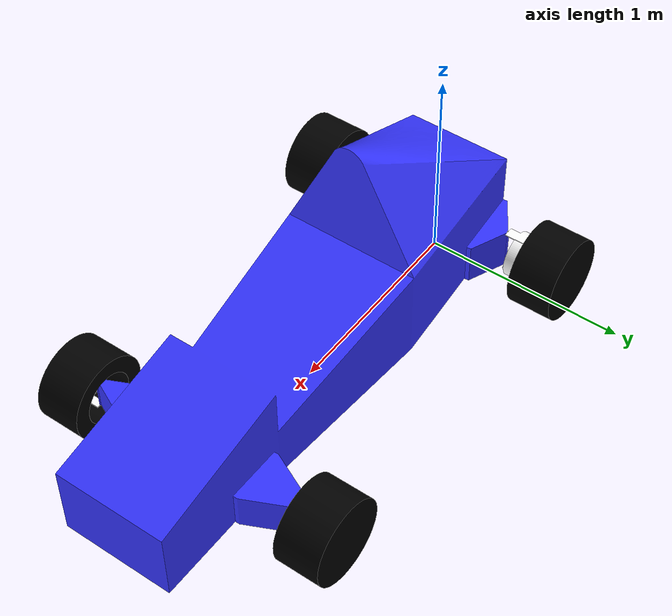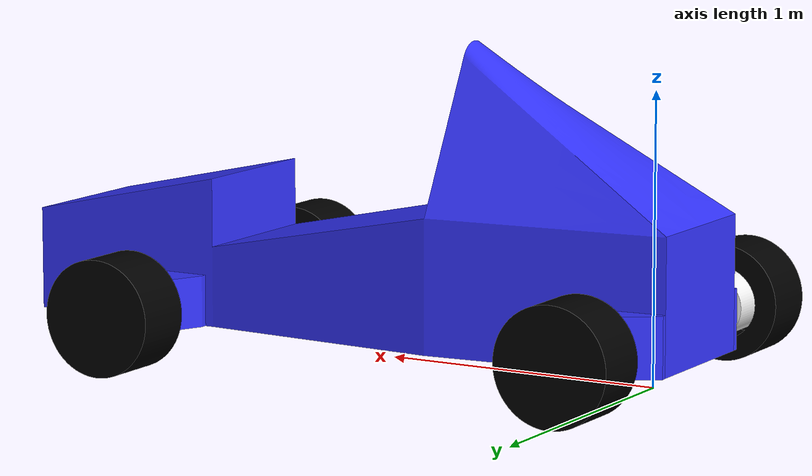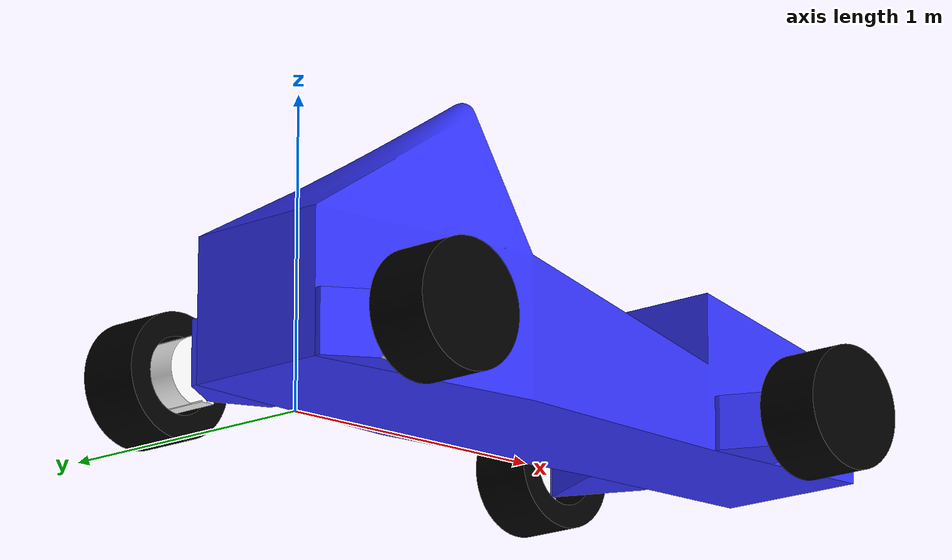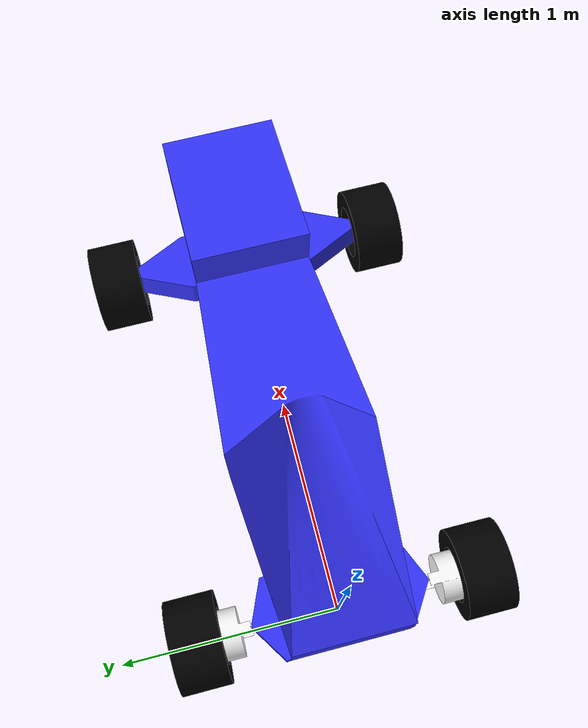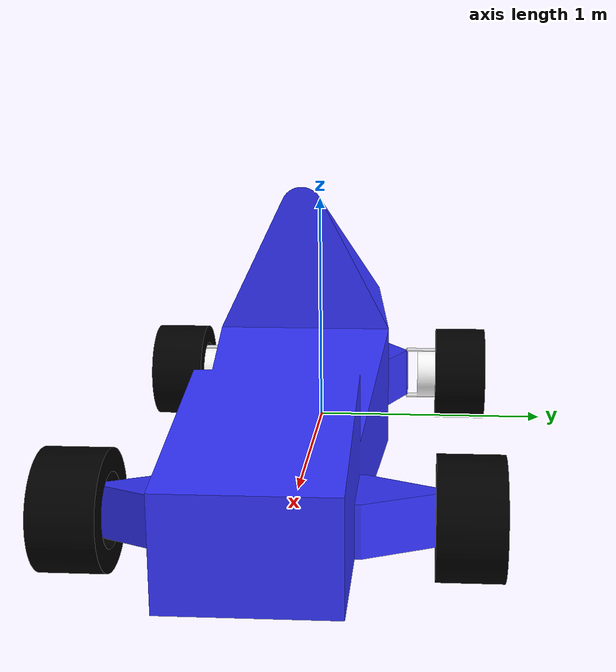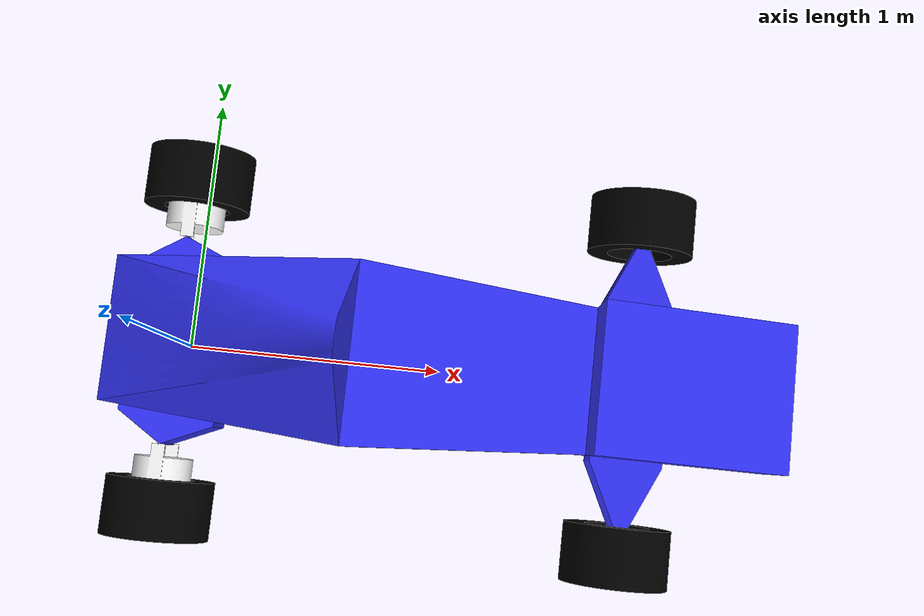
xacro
<?xml version="1.0"?>
<robot xmlns:xacro="http://www.ros.org/wiki/xacro">

  <!-- AV.ONE Robot Core Model (robot_core.xacro)                 -->

  <!-- Includes                                                   -->
  <xacro:include filename="inertial_macros.xacro"/>

  <!-- Mesh path notes                                             -->

  <!-- Could not figure out a way to have meshes work for both gazebo simulator and rviz  -->
  <!-- without hard-coding path. Using package is ideal way, but doesnt work with gazebo. -->

  <!-- Default (recommended): use package:// so it works on any machine -->

  <!-- Materials                                                   -->
  <material name="white">
    <color rgba="1 1 1 1"/>
  </material>

  <material name="orange">
    <color rgba="1 0.3 0.1 1"/>
  </material>

  <material name="blue">
    <color rgba="0.2 0.2 1 1"/>
  </material>

  <material name="black">
    <color rgba="0 0 0 1"/>
  </material>

  <!-- Base frames                                                 -->
  <!-- base_link: primary robot base frame (REP-103 style root) -->
  <link name="base_link">
    <!-- You can add visual, collision, and inertial info here -->
  </link>

  <!-- base_footprint: typically planar reference for navigation -->
  <joint name="base_footprint_joint" type="fixed">
    <parent link="base_link"/>
    <child link="base_footprint"/>
    <origin xyz="1.0 0 0" rpy="0 0 0"/>
  </joint>

  <link name="base_footprint"/>

  <!-- Chassis connection                                          -->
  <!-- Fixed joint connecting base_link to chassis -->
  <joint name="base_to_chassis" type="fixed">
    <parent link="base_link"/>
    <child link="chassis"/>
    <origin xyz="0 0 0.2028" rpy="0 0 0"/>
  </joint>

  <!-- Chassis link                                                 -->
  <link name="chassis">

    <!-- Main chassis body mesh -->
    <visual>
      <origin xyz="2.2924 -0.00985747 0.0751" rpy="3.14159 0 1.5708"/>
      <geometry>
        <mesh filename="package://avone/description/assets/chassis.stl"/>
      </geometry>
      <material name="blue"/>
    </visual>

    <collision>
      <origin xyz="2.2924 -0.00985747 0.0751" rpy="3.14159 0 1.5708"/>
      <geometry>
        <mesh filename="package://avone/description/assets/chassis.stl"/>
      </geometry>
    </collision>

    <!-- Approx inertial model for chassis -->
    <xacro:inertial_box mass="152" x="2.4" y="0.67" z="0.5">
      <origin xyz="0.812063 -0.000266118 0.127823" rpy="0 0 0"/>
    </xacro:inertial_box>

    <!-- Rear suspension meshes                                  -->

    <!-- Part rear_suspension -->
    <visual>
      <origin xyz="-0.170629 -0.28192 0.105" rpy="3.14159 5.47382e-48 -0.0851102"/>
      <geometry>
        <mesh filename="package://avone/description/assets/rear_suspension.stl"/>
      </geometry>
      <material name="blue"/>
    </visual>

    <collision>
      <origin xyz="-0.170629 -0.28192 0.105" rpy="3.14159 5.47382e-48 -0.0851102"/>
      <geometry>
        <mesh filename="package://avone/description/assets/rear_suspension.stl"/>
      </geometry>
    </collision>

    <!-- Part rear_suspension_2 -->
    <visual>
      <origin xyz="0.189017 0.312761 0.105" rpy="-3.14159 2.33363e-61 -3.05648"/>
      <geometry>
        <mesh filename="package://avone/description/assets/rear_suspension.stl"/>
      </geometry>
      <material name="blue"/>
    </visual>

    <collision>
      <origin xyz="0.189017 0.312761 0.105" rpy="-3.14159 2.33363e-61 -3.05648"/>
      <geometry>
        <mesh filename="package://avone/description/assets/rear_suspension.stl"/>
      </geometry>
    </collision>

    <!-- Front suspension meshes                                 -->

    <!-- Part front_suspension -->
    <visual>
      <origin xyz="1.6032 0.2935 0.075" rpy="3.14159 -1.54112e-16 1.5708"/>
      <geometry>
        <mesh filename="package://avone/description/assets/front_suspension.stl"/>
      </geometry>
      <material name="blue"/>
    </visual>

    <collision>
      <origin xyz="1.6032 0.2935 0.075" rpy="3.14159 -1.54112e-16 1.5708"/>
      <geometry>
        <mesh filename="package://avone/description/assets/front_suspension.stl"/>
      </geometry>
    </collision>

    <!-- Part front_suspension_2 -->
    <visual>
      <origin xyz="1.8748 -0.2935 0.075" rpy="-3.14159 1.54112e-16 -1.5708"/>
      <geometry>
        <mesh filename="package://avone/description/assets/front_suspension.stl"/>
      </geometry>
      <material name="blue"/>
    </visual>

    <collision>
      <origin xyz="1.8748 -0.2935 0.075" rpy="-3.14159 1.54112e-16 -1.5708"/>
      <geometry>
        <mesh filename="package://avone/description/assets/front_suspension.stl"/>
      </geometry>
    </collision>

    <!-- Rear wheel hub meshes (cosmetic on chassis link)         -->

    <!-- REAR WHEEL HUB LEFT -->
    <visual>
      <origin xyz="-0.181377 0.297001 -0.105" rpy="6.30462e-15 0 -6.18615e-05"/>
      <geometry>
        <mesh filename="package://avone/description/assets/rear_wheel_hub.stl"/>
      </geometry>
      <material name="white"/>
    </visual>

    <collision>
      <origin xyz="-0.181377 0.297001 -0.105" rpy="6.30462e-15 0 -6.18615e-05"/>
      <geometry>
        <mesh filename="package://avone/description/assets/rear_wheel_hub.stl"/>
      </geometry>
    </collision>

    <!-- REAR WHEEL HUB RIGHT -->
    <visual>
      <origin xyz="0.181423 -0.296978 -0.105" rpy="3.10966e-15 7.00787e-15 -3.14153"/>
      <geometry>
        <mesh filename="package://avone/description/assets/rear_wheel_hub.stl"/>
      </geometry>
      <material name="white"/>
    </visual>

    <collision>
      <origin xyz="0.181423 -0.296978 -0.105" rpy="3.10966e-15 7.00787e-15 -3.14153"/>
      <geometry>
        <mesh filename="package://avone/description/assets/rear_wheel_hub.stl"/>
      </geometry>
    </collision>

  </link>

  <!-- Gazebo material override for chassis                        -->
  <gazebo reference="chassis">
    <material>Gazebo/Blue</material>
  </gazebo>

  <!-- Rear drivetrain joints and wheel links                      -->

  <!-- LEFT WHEEL LINK (RLMotor) -->
  <joint name="RLMotor" type="continuous">
    <origin xyz="4.71381e-05 0.693977 3.30291e-15" rpy="1.5708 0 -6.18615e-05"/>
    <parent link="chassis"/>
    <child link="left_motor"/>
    <axis xyz="0 0 -1"/>
    <dynamics damping="0.02" friction="0.2"/>
    <limit effort="108.6" velocity="36.65"/>
  </joint>

  <link name="left_motor">
    <visual>
      <origin xyz="-8.09391e-17 7.65875e-18 0.17" rpy="1.5708 0 0"/>
      <geometry>
        <mesh filename="package://avone/description/assets/wheel.stl"/>
      </geometry>
      <material name="black"/>
    </visual>

    <collision>
      <origin xyz="-8.09391e-17 7.65875e-18 0.17" rpy="1.5708 0 0"/>
      <geometry>
        <sphere radius="0.220"/>
      </geometry>
    </collision>

    <xacro:inertial_cylinder mass="9.8" length="0.2" radius="0.2">
      <origin xyz="-8.09407e-17 -1.33567e-17 0.0496398" rpy="0 0 0"/>
    </xacro:inertial_cylinder>
  </link>

  <gazebo reference="left_motor">
    <material>Gazebo/Grey</material>
  </gazebo>

  <!-- RIGHT WHEEL LINK (RRMotor) -->
  <joint name="RRMotor" type="continuous">
    <origin xyz="4.71381e-05 -0.693977 2.30371e-15" rpy="1.5708 0 -3.14153"/>
    <parent link="chassis"/>
    <child link="right_motor"/>
    <axis xyz="0 0 1"/>

    <dynamics damping="0.02" friction="0.2"/>
    <limit effort="108.6" velocity="36.65"/>
    <!-- Could be wrong ;) -->

  </joint>

  <link name="right_motor">
    <visual>
      <origin xyz="-1.59877e-17 7.65404e-18 0.17" rpy="1.5708 0 0"/>
      <geometry>
        <mesh filename="package://avone/description/assets/wheel.stl"/>
      </geometry>
      <material name="black"/>
    </visual>

    <collision>
      <origin xyz="-1.59877e-17 7.65404e-18 0.17" rpy="1.5708 0 0"/>
      <geometry>
        <sphere radius="0.220"/>
      </geometry>
    </collision>

    <xacro:inertial_cylinder mass="9.8" length="0.2" radius="0.2">
      <origin xyz="-1.66794e-17 -1.33614e-17 0.0496398" rpy="0 0 0"/>
    </xacro:inertial_cylinder>
  </link>

  <gazebo reference="right_motor">
    <material>Gazebo/Grey</material>
  </gazebo>

  <!-- Front right steering and wheel                              -->

  <!-- FRONT RIGHT STEERING ASSEMBLY -->
  <joint name="RSteer" type="revolute">
    <origin xyz="1.739 -0.584139 0.075" rpy="-3.14159 0 -1.5708"/>
    <parent link="chassis"/>
    <child link="front_right_wheel_hub"/>
    <axis xyz="0 0 -1"/>
    <limit effort="33.4" velocity="1.0" lower="-0.610865" upper="0.610865"/>
    <dynamics damping="0.1" friction="0.05"/>
  </joint>

  <link name="front_right_wheel_hub">
    <visual>
      <origin xyz="-0.290639 0.1358 0.18" rpy="-3.14159 0 0"/>
      <geometry>
        <mesh filename="package://avone/description/assets/front_wheel_hub.stl"/>
      </geometry>
      <material name="white"/>
    </visual>

    <collision>
      <origin xyz="-0.290639 0.1358 0.18" rpy="-3.14159 0 0"/>
      <geometry>
        <mesh filename="package://avone/description/assets/front_wheel_hub.stl"/>
      </geometry>
    </collision>

    <xacro:inertial_box mass="1.6" x="0.1" y="0.1" z="0.1">
      <origin xyz="0.0824722 0 0.09" rpy="0 0 0"/>
    </xacro:inertial_box>
  </link>

  <gazebo reference="front_right_wheel_hub">
    <material>Gazebo/Black</material>
  </gazebo>

  <!-- Front right wheel spin joint -->
  <joint name="FRWheel" type="continuous">
    <origin xyz="0.10836 0 0.09" rpy="1.5708 0 -1.5708"/>
    <parent link="front_right_wheel_hub"/>
    <child link="front_right_wheel"/>
    <axis xyz="0 0 1"/>
    <limit effort="50" velocity="100"/>
    <dynamics damping="0.0" friction="0.0"/>
  </joint>

  <link name="front_right_wheel">
    <visual>
      <origin xyz="2.22045e-16 0 0.17" rpy="1.5708 0 1.5708"/>
      <geometry>
        <mesh filename="package://avone/description/assets/wheel.stl"/>
      </geometry>
      <material name="black"/>
    </visual>

    <collision>
      <origin xyz="2.22045e-16 0 0.17" rpy="1.5708 0 1.5708"/>
      <geometry>
        <sphere radius="0.220"/>
      </geometry>
    </collision>

    <xacro:inertial_cylinder mass="9.8" length="0.2" radius="0.2">
      <origin xyz="2.33038e-16 0 0.0496398" rpy="0 0 0"/>
    </xacro:inertial_cylinder>
  </link>

  <gazebo reference="front_right_wheel">
    <material>Gazebo/Grey</material>
  </gazebo>

  <!-- Front left steering and wheel                              -->

  <!-- FRONT LEFT STEERING ASSEMBLY -->
  <joint name="LSteer" type="revolute">
    <origin xyz="1.739 0.584139 0.075" rpy="3.14159 0 1.5708"/>
    <parent link="chassis"/>
    <child link="front_left_wheel_hub"/>
    <axis xyz="0 0 -1"/>
    <limit effort="33.4" velocity="1.0" lower="-0.610865" upper="0.610865"/>
    <dynamics damping="0.1" friction="0.05"/>
  </joint>

  <link name="front_left_wheel_hub">
    <visual>
      <origin xyz="-0.290639 0.1358 0.18" rpy="3.14159 0 0"/>
      <geometry>
        <mesh filename="package://avone/description/assets/front_wheel_hub.stl"/>
      </geometry>
      <material name="white"/>
    </visual>

    <collision>
      <origin xyz="-0.290639 0.1358 0.18" rpy="3.14159 0 0"/>
      <geometry>
        <mesh filename="package://avone/description/assets/front_wheel_hub.stl"/>
      </geometry>
    </collision>

    <xacro:inertial_box mass="1.6" x="0.1" y="0.1" z="0.1">
      <origin xyz="0.0824722 0 0.09" rpy="0 0 0"/>
    </xacro:inertial_box>
  </link>

  <gazebo reference="front_left_wheel_hub">
    <material>Gazebo/Black</material>
  </gazebo>

  <!-- Front left wheel spin joint -->
  <joint name="FLWheel" type="continuous">
    <origin xyz="0.10836 0 0.09" rpy="1.5708 0 -1.5708"/>
    <parent link="front_left_wheel_hub"/>
    <child link="front_left_wheel"/>
    <axis xyz="0 0 1"/>
    <limit effort="50" velocity="100"/>
    <dynamics damping="0.0" friction="0.0"/>
  </joint>

  <link name="front_left_wheel">
    <visual>
      <origin xyz="0 0 0.17" rpy="1.5708 0 0"/>
      <geometry>
        <mesh filename="package://avone/description/assets/wheel.stl"/>
      </geometry>
      <material name="black"/>
    </visual>

    <collision>
      <origin xyz="0 0 0.17" rpy="1.5708 0 0"/>
      <geometry>
        <sphere radius="0.220"/>
      </geometry>
    </collision>

    <xacro:inertial_cylinder mass="9.8" length="0.2" radius="0.2">
      <origin xyz="0 0 0.0496398" rpy="0 0 0"/>
    </xacro:inertial_cylinder>
  </link>

  <gazebo reference="front_left_wheel">
    <material>Gazebo/Grey</material>
  </gazebo>
</robot>
